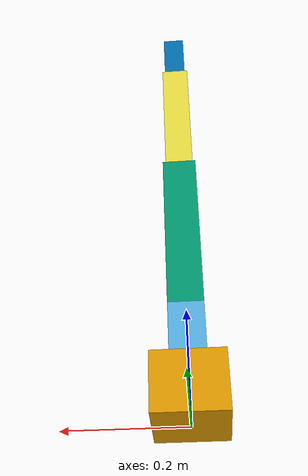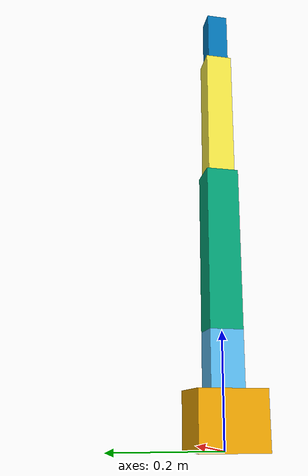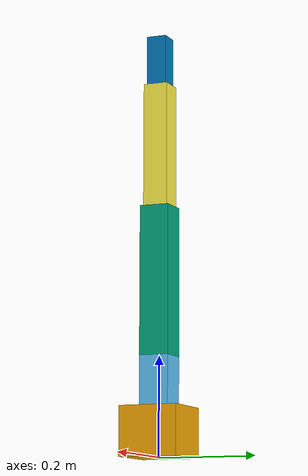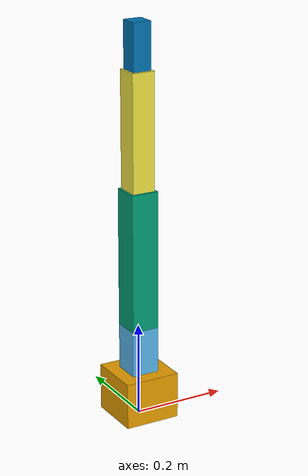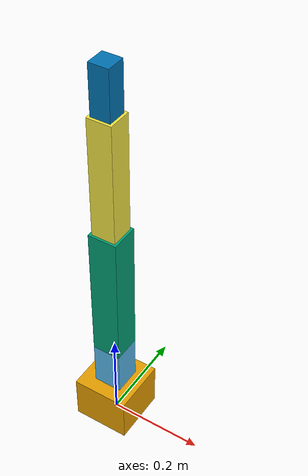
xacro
<?xml version="1.0"?>
<robot name="tiny_xarm" xmlns:xacro="http://www.ros.org/wiki/xacro">
  <xacro:arg name="effort" default="40"/>
  <xacro:property name="effort" value="$(arg effort)"/>
  <xacro:include filename="$(find tiny_arm_description)/urdf/links.xacro"/>
  <link name="base">
    <visual><geometry><mesh filename="package://tiny_arm_description/meshes/base.stl"/></geometry></visual>
    <collision><origin xyz="0 0 0.05"/><geometry><cylinder radius="0.06" length="0.1"/></geometry></collision>
    <inertial><mass value="2.0"/><inertia ixx="0.001" iyy="0.001" izz="0.001" ixy="0" ixz="0" iyz="0"/></inertial>
  </link>
  <xacro:box_link name="l1" sx="0.06" sy="0.06" sz="0.1"/>
  <xacro:box_link name="l2" sx="0.06" sy="0.06" sz="0.3"/>
  <xacro:box_link name="l3" sx="0.05" sy="0.05" sz="0.25"/>
  <xacro:box_link name="l4" sx="0.04" sy="0.04" sz="0.1"/>
  <xacro:rev name="j1" parent="base" child="l1" z="0.1" axis="0 0 1"/>
  <xacro:rev name="j2" parent="l1" child="l2" z="0.1" axis="0 1 0"/>
  <xacro:rev name="j3" parent="l2" child="l3" z="0.3" axis="0 1 0"/>
  <xacro:rev name="j4" parent="l3" child="l4" z="0.25" axis="0 1 0"/>
</robot>

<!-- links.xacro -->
<robot xmlns:xacro="http://www.ros.org/wiki/xacro">
  <xacro:macro name="box_link" params="name sx sy sz mass:=0.6">
    <link name="${name}">
      <visual><origin xyz="0 0 ${sz/2}"/><geometry><box size="${sx} ${sy} ${sz}"/></geometry></visual>
      <collision><origin xyz="0 0 ${sz/2}"/><geometry><box size="${sx} ${sy} ${sz}"/></geometry></collision>
      <inertial><origin xyz="0 0 ${sz/2}"/><mass value="${mass}"/><inertia ixx="0.001" iyy="0.001" izz="0.001" ixy="0" ixz="0" iyz="0"/></inertial>
    </link>
  </xacro:macro>
  <xacro:macro name="rev" params="name parent child z axis">
    <joint name="${name}" type="revolute"><parent link="${parent}"/><child link="${child}"/><origin xyz="0 0 ${z}"/>
      <axis xyz="${axis}"/><limit lower="-3.1" upper="3.1" effort="${effort}" velocity="3"/></joint>
  </xacro:macro>
</robot>
